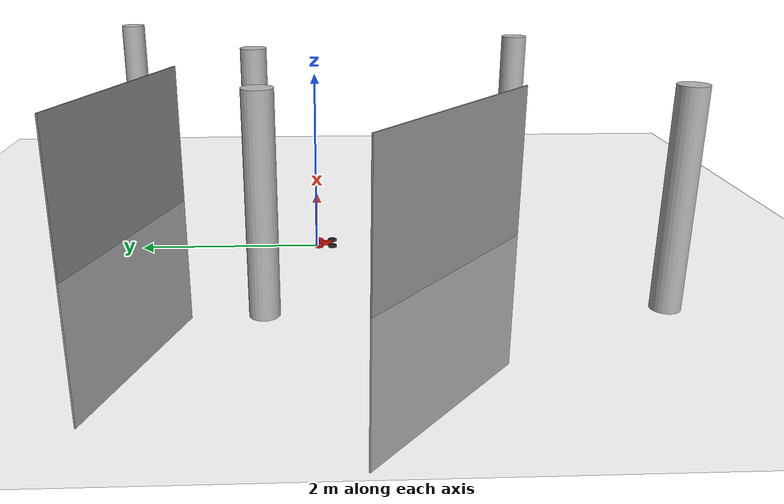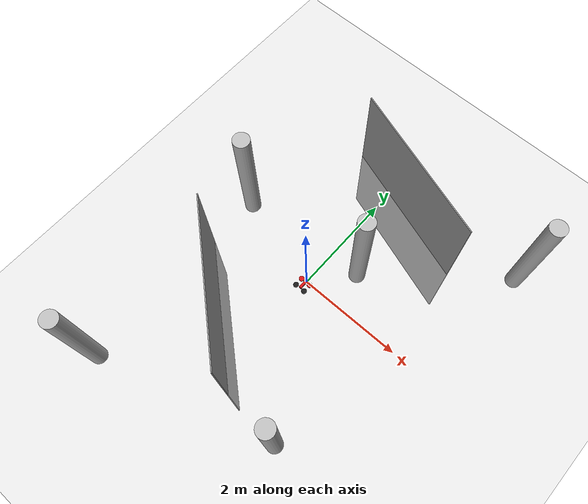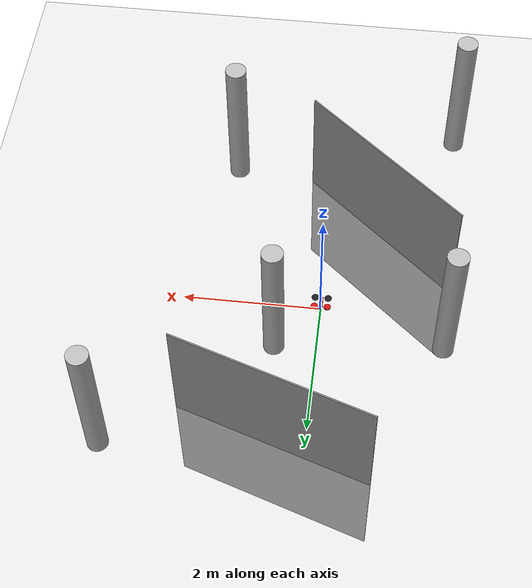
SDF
<sdf version="1.6">
 <world name="cyberzoo">
  <physics name="default_physics" default="0" type="ode">
   <max_step_size>0.001</max_step_size>
   <real_time_update_rate>0</real_time_update_rate>
   <real_time_factor>1</real_time_factor>
  </physics>
  <scene>
   <ambient>0.9 0.9 0.9 1</ambient>
   <background>0.7 0.7 0.7 1</background>
   <origin_visual>0</origin_visual>
   <shadows>0</shadows>
  </scene>
  <spherical_coordinates>
   <surface_model>EARTH_WGS84</surface_model>
   <latitude_deg>51.9906</latitude_deg>
   <longitude_deg>4.37679</longitude_deg>
   <elevation>45.11</elevation>
   <heading_deg>180</heading_deg>
  </spherical_coordinates>
  <model name="ground_plane">
   <static>1</static>
   <link name="link">
    <collision name="collision">
     <geometry><plane><normal>0 0 1</normal><size>100 100</size></plane></geometry>
     <surface>
      <contact><collide_bitmask>65535</collide_bitmask></contact>
      <friction><ode><mu>100</mu><mu2>50</mu2></ode></friction>
     </surface>
    </collision>
    <visual name="visual">
     <cast_shadows>0</cast_shadows>
     <geometry><plane><normal>0 0 1</normal><size>100 100</size></plane></geometry>
     <material>
      <script><uri>file://media/materials/scripts/gazebo.material</uri><name>Gazebo/Grey</name></script>
     </material>
    </visual>
   </link>
   <pose>0 0 -0.02 0 -0 0.454</pose>
  </model>
  <model name="orange_pole1">
   <static>1</static>
   <pose>-1.8 -3.4 0 0 -0 0</pose>
   <link name="orange_pole">
    <visual name="pole"><geometry><mesh><uri>model://orange_pole/orange_pole.dae</uri></mesh></geometry></visual>
    <collision name="pole_collision">
     <geometry><mesh><uri>model://orange_pole/orange_pole.dae</uri></mesh></geometry>
    </collision>
   </link>
  </model>
  <model name="orange_pole2">
   <static>1</static>
   <pose>-1.8 0.5 0 0 -0 0</pose>
   <link name="orange_pole">
    <visual name="pole"><geometry><mesh><uri>model://orange_pole/orange_pole.dae</uri></mesh></geometry></visual>
    <collision name="pole_collision">
     <geometry><mesh><uri>model://orange_pole/orange_pole.dae</uri></mesh></geometry>
    </collision>
   </link>
  </model>
  <model name="orange_pole3">
   <static>1</static>
   <pose>0.6 0.7 0 0 -0 0</pose>
   <link name="orange_pole">
    <visual name="pole"><geometry><mesh><uri>model://orange_pole/orange_pole.dae</uri></mesh></geometry></visual>
    <collision name="pole_collision">
     <geometry><mesh><uri>model://orange_pole/orange_pole.dae</uri></mesh></geometry>
    </collision>
   </link>
  </model>
  <model name="orange_pole4">
   <static>1</static>
   <pose>1.5 -2.5 0 0 -0 0</pose>
   <link name="orange_pole">
    <visual name="pole"><geometry><mesh><uri>model://orange_pole/orange_pole.dae</uri></mesh></geometry></visual>
    <collision name="pole_collision">
     <geometry><mesh><uri>model://orange_pole/orange_pole.dae</uri></mesh></geometry>
    </collision>
   </link>
  </model>
  <model name="orange_pole5">
   <static>1</static>
   <pose>2.8 2.5 0 0 -0 0</pose>
   <link name="orange_pole">
    <visual name="pole"><geometry><mesh><uri>model://orange_pole/orange_pole.dae</uri></mesh></geometry></visual>
    <collision name="pole_collision">
     <geometry><mesh><uri>model://orange_pole/orange_pole.dae</uri></mesh></geometry>
    </collision>
   </link>
  </model>
  <gravity>0 0 -9.8</gravity>
  <magnetic_field>6e-06 2.3e-05 -4.2e-05</magnetic_field>
  <atmosphere type="adiabatic"/>
  <model name="bebop">
   <pose>-0.002954 -0.101906 0.034797 0 -0.001015 1.57224</pose>
   <link name="chassis">
    <velocity_decay><linear>0.001</linear></velocity_decay>
    <inertial>
     <mass>0.536</mass>
     <inertia>
      <ixx>0.000906</ixx>
      <iyy>0.001242</iyy>
      <izz>0.002054</izz>
      <ixy>0</ixy>
      <ixz>1.4e-05</ixz>
      <iyz>0</iyz>
     </inertia>
    </inertial>
    <collision name="collision"><geometry><box><size>0.4 0.4 0.05</size></box></geometry></collision>
    <visual name="visual">
     <geometry><box><size>0.15 0.05 0.05</size></box></geometry>
     <material><diffuse>0.82 0.07 0.07 1</diffuse><ambient>0.82 0.07 0.07 1</ambient></material>
    </visual>
    <sensor name="contactsensor" type="contact">
     <contact><collision>collision</collision><topic>__default_topic__</topic></contact>
    </sensor>
   </link>
   <link name="nw_motor">
    <pose>0.077 0.095 0 0 -0 0</pose>
    <inertial>
     <mass>0.01</mass>
     <inertia><ixx>0.0001</ixx><iyy>0.0001</iyy><izz>0.0001</izz><ixy>0</ixy><iyz>0</iyz><ixz>0</ixz></inertia>
    </inertial>
    <visual name="visual">
     <geometry><cylinder><radius>0.05</radius><length>0.02</length></cylinder></geometry>
     <material><diffuse>0.82 0.07 0.07 1</diffuse><ambient>0.82 0.07 0.07 1</ambient></material>
    </visual>
   </link>
   <joint name="nw_motor_joint" type="fixed"><parent>chassis</parent><child>nw_motor</child></joint>
   <link name="se_motor">
    <pose>-0.077 -0.095 0 0 -0 0</pose>
    <inertial>
     <mass>0.01</mass>
     <inertia><ixx>0.0001</ixx><iyy>0.0001</iyy><izz>0.0001</izz><ixy>0</ixy><iyz>0</iyz><ixz>0</ixz></inertia>
    </inertial>
    <visual name="visual">
     <geometry><cylinder><radius>0.05</radius><length>0.02</length></cylinder></geometry>
     <material><diffuse>0.1 0.1 0.1 1</diffuse><ambient>0.1 0.1 0.1 1</ambient></material>
    </visual>
   </link>
   <joint name="se_motor_joint" type="fixed"><parent>chassis</parent><child>se_motor</child></joint>
   <link name="ne_motor">
    <pose>0.077 -0.095 0 0 -0 0</pose>
    <inertial>
     <mass>0.01</mass>
     <inertia><ixx>0.0001</ixx><iyy>0.0001</iyy><izz>0.0001</izz><ixy>0</ixy><iyz>0</iyz><ixz>0</ixz></inertia>
    </inertial>
    <visual name="visual">
     <geometry><cylinder><radius>0.05</radius><length>0.02</length></cylinder></geometry>
     <material><diffuse>0.82 0.07 0.07 1</diffuse><ambient>0.82 0.07 0.07 1</ambient></material>
    </visual>
   </link>
   <joint name="ne_motor_joint" type="fixed"><parent>chassis</parent><child>ne_motor</child></joint>
   <link name="sw_motor">
    <pose>-0.077 0.095 0 0 -0 0</pose>
    <inertial>
     <mass>0.01</mass>
     <inertia><ixx>0.0001</ixx><iyy>0.0001</iyy><izz>0.0001</izz><ixy>0</ixy><iyz>0</iyz><ixz>0</ixz></inertia>
    </inertial>
    <visual name="visual">
     <geometry><cylinder><radius>0.05</radius><length>0.02</length></cylinder></geometry>
     <material><diffuse>0.1 0.1 0.1 1</diffuse><ambient>0.1 0.1 0.1 1</ambient></material>
    </visual>
   </link>
   <joint name="sw_motor_joint" type="fixed"><parent>chassis</parent><child>sw_motor</child></joint>
   <link name="front_camera">
    <pose>0.15 0 0 -1.57 0.33 0</pose>
    <inertial>
     <mass>0.001</mass>
     <inertia><ixx>0.0001</ixx><iyy>0.0001</iyy><izz>0.0001</izz><ixy>0</ixy><iyz>0</iyz><ixz>0</ixz></inertia>
    </inertial>
    <sensor name="mt9f002" type="wideanglecamera">
     <update_rate>15</update_rate>
     <camera name="__default__">
      <image><width>1152</width><height>822</height><format>R8G8B8</format></image>
      <horizontal_fov>3.7</horizontal_fov>
      <lens>
       <type>equisolid_angle</type>
       <scale_to_hfov>1</scale_to_hfov>
       <cutoff_angle>1.8</cutoff_angle>
       <env_texture_size>512</env_texture_size>
      </lens>
      <clip><near>0.01</near><far>300</far></clip>
      <noise><type>gaussian</type><mean>0</mean><stddev>0.007</stddev></noise>
     </camera>
    </sensor>
   </link>
   <joint name="front_camera_joint" type="fixed"><parent>chassis</parent><child>front_camera</child></joint>
   <link name="bottom_camera">
    <pose>0 0 0 0 1.57 0</pose>
    <inertial>
     <mass>0.001</mass>
     <inertia><ixx>0.0001</ixx><iyy>0.0001</iyy><izz>0.0001</izz><ixy>0</ixy><iyz>0</iyz><ixz>0</ixz></inertia>
    </inertial>
    <sensor name="mt9v117" type="camera">
     <update_rate>90</update_rate>
     <camera name="__default__">
      <horizontal_fov>0.7175</horizontal_fov>
      <image><width>240</width><height>240</height><format>R8G8B8</format></image>
      <clip><near>0.02</near><far>300</far></clip>
      <noise><type>gaussian</type><mean>0</mean><stddev>0.007</stddev></noise>
     </camera>
    </sensor>
   </link>
   <joint name="bottom_camera_joint" type="fixed"><parent>chassis</parent><child>bottom_camera</child></joint>
  </model>
  <audio><device>default</device></audio>
  <model name="black_panel">
   <link name="link_0">
    <inertial>
     <mass>0.509953</mass>
     <inertia>
      <ixx>0.908381</ixx>
      <ixy>0</ixy>
      <ixz>0</ixz>
      <iyy>0.548316</iyy>
      <iyz>0</iyz>
      <izz>0.360098</izz>
     </inertia>
    </inertial>
    <pose>-4e-06 -4e-06 0 0 -0 0</pose>
    <visual name="visual">
     <geometry><box><size>0.019545 2.91089 3.59199</size></box></geometry>
     <material>
      <lighting>1</lighting>
      <script><uri>file://media/materials/scripts/gazebo.material</uri><name>Gazebo/Grey</name></script>
      <shader type="pixel"/>
     </material>
    </visual>
    <collision name="collision">
     <geometry><box><size>0.019545 2.91089 3.59199</size></box></geometry>
     <surface>
      <friction>
       <ode><mu>1</mu><mu2>1</mu2><fdir1>0 0 0</fdir1><slip1>0</slip1><slip2>0</slip2></ode>
       <torsional>
        <coefficient>1</coefficient>
        <patch_radius>0</patch_radius>
        <surface_radius>0</surface_radius>
        <use_patch_radius>1</use_patch_radius>
        <ode><slip>0</slip></ode>
       </torsional>
      </friction>
      <bounce><restitution_coefficient>0</restitution_coefficient><threshold>1e+06</threshold></bounce>
      <contact>
       <collide_without_contact>0</collide_without_contact>
       <collide_without_contact_bitmask>1</collide_without_contact_bitmask>
       <collide_bitmask>1</collide_bitmask>
       <ode>
        <soft_cfm>0</soft_cfm>
        <soft_erp>0.2</soft_erp>
        <kp>1e+13</kp>
        <kd>1</kd>
        <max_vel>0.01</max_vel>
        <min_depth>0</min_depth>
       </ode>
       <bullet>
        <split_impulse>1</split_impulse>
        <split_impulse_penetration_threshold>-0.01</split_impulse_penetration_threshold>
        <soft_cfm>0</soft_cfm>
        <soft_erp>0.2</soft_erp>
        <kp>1e+13</kp>
        <kd>1</kd>
       </bullet>
      </contact>
     </surface>
    </collision>
   </link>
   <static>1</static>
   <pose>0.450089 2.27253 0 0 -0 1.24905</pose>
  </model>
  <model name="black_panel_0">
   <link name="link_0">
    <inertial>
     <mass>0.509953</mass>
     <inertia>
      <ixx>0.908381</ixx>
      <ixy>0</ixy>
      <ixz>0</ixz>
      <iyy>0.548316</iyy>
      <iyz>0</iyz>
      <izz>0.360098</izz>
     </inertia>
    </inertial>
    <pose>-4e-06 -4e-06 0 0 -0 0</pose>
    <visual name="visual">
     <geometry><box><size>0.019545 2.91089 3.59199</size></box></geometry>
     <material>
      <lighting>1</lighting>
      <script><uri>file://media/materials/scripts/gazebo.material</uri><name>Gazebo/Grey</name></script>
      <shader type="pixel"/>
     </material>
    </visual>
    <collision name="collision">
     <geometry><box><size>0.019545 2.91089 3.59199</size></box></geometry>
     <surface>
      <friction>
       <ode><mu>1</mu><mu2>1</mu2><fdir1>0 0 0</fdir1><slip1>0</slip1><slip2>0</slip2></ode>
       <torsional>
        <coefficient>1</coefficient>
        <patch_radius>0</patch_radius>
        <surface_radius>0</surface_radius>
        <use_patch_radius>1</use_patch_radius>
        <ode><slip>0</slip></ode>
       </torsional>
      </friction>
      <bounce><restitution_coefficient>0</restitution_coefficient><threshold>1e+06</threshold></bounce>
      <contact>
       <collide_without_contact>0</collide_without_contact>
       <collide_without_contact_bitmask>1</collide_without_contact_bitmask>
       <collide_bitmask>1</collide_bitmask>
       <ode>
        <soft_cfm>0</soft_cfm>
        <soft_erp>0.2</soft_erp>
        <kp>1e+13</kp>
        <kd>1</kd>
        <max_vel>0.01</max_vel>
        <min_depth>0</min_depth>
       </ode>
       <bullet>
        <split_impulse>1</split_impulse>
        <split_impulse_penetration_threshold>-0.01</split_impulse_penetration_threshold>
        <soft_cfm>0</soft_cfm>
        <soft_erp>0.2</soft_erp>
        <kp>1e+13</kp>
        <kd>1</kd>
       </bullet>
      </contact>
     </surface>
    </collision>
   </link>
   <static>1</static>
   <pose>-0.756852 -1.47074 0 0 -0 0.85727</pose>
  </model>
 </world>
</sdf>
